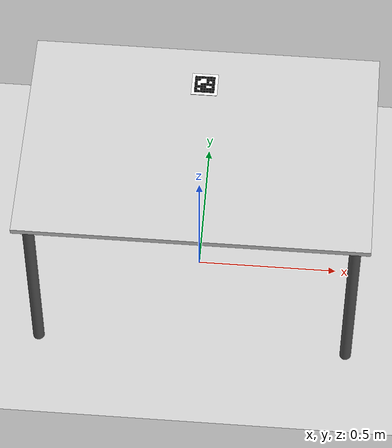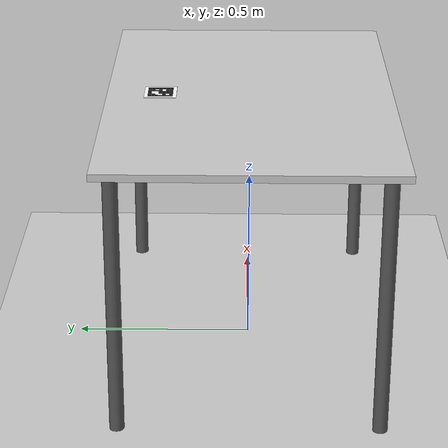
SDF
<sdf version="1.6">
  <world name="calibration_table">
    <include><uri>model://sun</uri></include>
    <include><uri>model://ground_plane</uri></include>

    <physics type="ode">
      <gravity>0 0 0</gravity>
    </physics>

    <include>
      <name>aruco_marker</name>
      <pose>0.0 0.25 0.752 1.5708 0 0</pose>
      <uri>model://aruco_marker</uri>
    </include>

    <!-- Desk surface is z=0.75 m: 1.20 x 0.80 x 0.02 m. -->
    <model name="calibration_desk">
      <static>true</static>
      <link name="desk_top">
        <pose>0 0 0.74 0 0 0</pose>
        <collision name="desk_top_collision">
          <geometry><box><size>1.2 0.8 0.02</size></box></geometry>
        </collision>
        <visual name="desk_top_visual">
          <geometry><box><size>1.2 0.8 0.02</size></box></geometry>
          <material><ambient>0.8 0.8 0.8 1</ambient></material>
        </visual>
      </link>
      <!-- Each visible leg uses the same geometry as its collision body. -->
      <link name="leg_fl"><pose> 0.55  0.35 0.37 0 0 0</pose>
        <collision name="leg_fl_collision"><geometry><cylinder><radius>0.02</radius><length>0.74</length></cylinder></geometry></collision>
        <visual name="leg_fl_visual"><geometry><cylinder><radius>0.02</radius><length>0.74</length></cylinder></geometry><material><ambient>0.35 0.35 0.35 1</ambient></material></visual></link>
      <link name="leg_fr"><pose> 0.55 -0.35 0.37 0 0 0</pose>
        <collision name="leg_fr_collision"><geometry><cylinder><radius>0.02</radius><length>0.74</length></cylinder></geometry></collision>
        <visual name="leg_fr_visual"><geometry><cylinder><radius>0.02</radius><length>0.74</length></cylinder></geometry><material><ambient>0.35 0.35 0.35 1</ambient></material></visual></link>
      <link name="leg_bl"><pose>-0.55  0.35 0.37 0 0 0</pose>
        <collision name="leg_bl_collision"><geometry><cylinder><radius>0.02</radius><length>0.74</length></cylinder></geometry></collision>
        <visual name="leg_bl_visual"><geometry><cylinder><radius>0.02</radius><length>0.74</length></cylinder></geometry><material><ambient>0.35 0.35 0.35 1</ambient></material></visual></link>
      <link name="leg_br"><pose>-0.55 -0.35 0.37 0 0 0</pose>
        <collision name="leg_br_collision"><geometry><cylinder><radius>0.02</radius><length>0.74</length></cylinder></geometry></collision>
        <visual name="leg_br_visual"><geometry><cylinder><radius>0.02</radius><length>0.74</length></cylinder></geometry><material><ambient>0.35 0.35 0.35 1</ambient></material></visual></link>
    </model>
  </world>
</sdf>

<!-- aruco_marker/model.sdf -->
<sdf version="1.6">
  <model name="aruco_5x5_250_id1">
    <static>true</static>
    <link name="board">
      <!-- DICT_5X5_250 marker id=1, borderBits=1. Rendered as geometry so Gazebo does not depend on texture/material loading. -->
      <!-- Back-side cells are mirrored in X so cameras viewing the rear face still see the canonical marker, not a mirror image. -->
      <collision name="collision">
        <geometry>
          <box>
            <size>0.09 0.002 0.09</size>
          </box>
        </geometry>
      </collision>

      <visual name="white_backing">
        <geometry>
          <box>
            <size>0.09 0.002 0.09</size>
          </box>
        </geometry>
        <material>
          <ambient>1 1 1 1</ambient>
          <diffuse>1 1 1 1</diffuse>
          <specular>0.1 0.1 0.1 1</specular>
        </material>
      </visual>

      <visual name="front_black_r0_c0">
        <pose>-0.0300 -0.00101 0.0300 0 0 0</pose>
        <geometry>
          <box>
            <size>0.0100 0.00002 0.0100</size>
          </box>
        </geometry>
        <material>
          <ambient>0 0 0 1</ambient>
          <diffuse>0 0 0 1</diffuse>
          <specular>0 0 0 1</specular>
        </material>
      </visual>
      <visual name="back_black_r0_c0_mirrored">
        <pose>0.0300 0.00101 0.0300 0 0 0</pose>
        <geometry>
          <box>
            <size>0.0100 0.00002 0.0100</size>
          </box>
        </geometry>
        <material>
          <ambient>0 0 0 1</ambient>
          <diffuse>0 0 0 1</diffuse>
          <specular>0 0 0 1</specular>
        </material>
      </visual>
      <visual name="front_black_r0_c1">
        <pose>-0.0200 -0.00101 0.0300 0 0 0</pose>
        <geometry>
          <box>
            <size>0.0100 0.00002 0.0100</size>
          </box>
        </geometry>
        <material>
          <ambient>0 0 0 1</ambient>
          <diffuse>0 0 0 1</diffuse>
          <specular>0 0 0 1</specular>
        </material>
      </visual>
      <visual name="back_black_r0_c1_mirrored">
        <pose>0.0200 0.00101 0.0300 0 0 0</pose>
        <geometry>
          <box>
            <size>0.0100 0.00002 0.0100</size>
          </box>
        </geometry>
        <material>
          <ambient>0 0 0 1</ambient>
          <diffuse>0 0 0 1</diffuse>
          <specular>0 0 0 1</specular>
        </material>
      </visual>
      <visual name="front_black_r0_c2">
        <pose>-0.0100 -0.00101 0.0300 0 0 0</pose>
        <geometry>
          <box>
            <size>0.0100 0.00002 0.0100</size>
          </box>
        </geometry>
        <material>
          <ambient>0 0 0 1</ambient>
          <diffuse>0 0 0 1</diffuse>
          <specular>0 0 0 1</specular>
        </material>
      </visual>
      <visual name="back_black_r0_c2_mirrored">
        <pose>0.0100 0.00101 0.0300 0 0 0</pose>
        <geometry>
          <box>
            <size>0.0100 0.00002 0.0100</size>
          </box>
        </geometry>
        <material>
          <ambient>0 0 0 1</ambient>
          <diffuse>0 0 0 1</diffuse>
          <specular>0 0 0 1</specular>
        </material>
      </visual>
      <visual name="front_black_r0_c3">
        <pose>0.0000 -0.00101 0.0300 0 0 0</pose>
        <geometry>
          <box>
            <size>0.0100 0.00002 0.0100</size>
          </box>
        </geometry>
        <material>
          <ambient>0 0 0 1</ambient>
          <diffuse>0 0 0 1</diffuse>
          <specular>0 0 0 1</specular>
        </material>
      </visual>
      <visual name="back_black_r0_c3_mirrored">
        <pose>0.0000 0.00101 0.0300 0 0 0</pose>
        <geometry>
          <box>
            <size>0.0100 0.00002 0.0100</size>
          </box>
        </geometry>
        <material>
          <ambient>0 0 0 1</ambient>
          <diffuse>0 0 0 1</diffuse>
          <specular>0 0 0 1</specular>
        </material>
      </visual>
      <visual name="front_black_r0_c4">
        <pose>0.0100 -0.00101 0.0300 0 0 0</pose>
        <geometry>
          <box>
            <size>0.0100 0.00002 0.0100</size>
          </box>
        </geometry>
        <material>
          <ambient>0 0 0 1</ambient>
          <diffuse>0 0 0 1</diffuse>
          <specular>0 0 0 1</specular>
        </material>
      </visual>
      <visual name="back_black_r0_c4_mirrored">
        <pose>-0.0100 0.00101 0.0300 0 0 0</pose>
        <geometry>
          <box>
            <size>0.0100 0.00002 0.0100</size>
          </box>
        </geometry>
        <material>
          <ambient>0 0 0 1</ambient>
          <diffuse>0 0 0 1</diffuse>
          <specular>0 0 0 1</specular>
        </material>
      </visual>
      <visual name="front_black_r0_c5">
        <pose>0.0200 -0.00101 0.0300 0 0 0</pose>
        <geometry>
          <box>
            <size>0.0100 0.00002 0.0100</size>
          </box>
        </geometry>
        <material>
          <ambient>0 0 0 1</ambient>
          <diffuse>0 0 0 1</diffuse>
          <specular>0 0 0 1</specular>
        </material>
      </visual>
      <visual name="back_black_r0_c5_mirrored">
        <pose>-0.0200 0.00101 0.0300 0 0 0</pose>
        <geometry>
          <box>
            <size>0.0100 0.00002 0.0100</size>
          </box>
        </geometry>
        <material>
          <ambient>0 0 0 1</ambient>
          <diffuse>0 0 0 1</diffuse>
          <specular>0 0 0 1</specular>
        </material>
      </visual>
      <visual name="front_black_r0_c6">
        <pose>0.0300 -0.00101 0.0300 0 0 0</pose>
        <geometry>
          <box>
            <size>0.0100 0.00002 0.0100</size>
          </box>
        </geometry>
        <material>
          <ambient>0 0 0 1</ambient>
          <diffuse>0 0 0 1</diffuse>
          <specular>0 0 0 1</specular>
        </material>
      </visual>
      <visual name="back_black_r0_c6_mirrored">
        <pose>-0.0300 0.00101 0.0300 0 0 0</pose>
        <geometry>
          <box>
            <size>0.0100 0.00002 0.0100</size>
          </box>
        </geometry>
        <material>
          <ambient>0 0 0 1</ambient>
          <diffuse>0 0 0 1</diffuse>
          <specular>0 0 0 1</specular>
        </material>
      </visual>
      <visual name="front_black_r1_c0">
        <pose>-0.0300 -0.00101 0.0200 0 0 0</pose>
        <geometry>
          <box>
            <size>0.0100 0.00002 0.0100</size>
          </box>
        </geometry>
        <material>
          <ambient>0 0 0 1</ambient>
          <diffuse>0 0 0 1</diffuse>
          <specular>0 0 0 1</specular>
        </material>
      </visual>
      <visual name="back_black_r1_c0_mirrored">
        <pose>0.0300 0.00101 0.0200 0 0 0</pose>
        <geometry>
          <box>
            <size>0.0100 0.00002 0.0100</size>
          </box>
        </geometry>
        <material>
          <ambient>0 0 0 1</ambient>
          <diffuse>0 0 0 1</diffuse>
          <specular>0 0 0 1</specular>
        </material>
      </visual>
      <visual name="front_black_r1_c1">
        <pose>-0.0200 -0.00101 0.0200 0 0 0</pose>
        <geometry>
          <box>
            <size>0.0100 0.00002 0.0100</size>
          </box>
        </geometry>
        <material>
          <ambient>0 0 0 1</ambient>
          <diffuse>0 0 0 1</diffuse>
          <specular>0 0 0 1</specular>
        </material>
      </visual>
      <visual name="back_black_r1_c1_mirrored">
        <pose>0.0200 0.00101 0.0200 0 0 0</pose>
        <geometry>
          <box>
            <size>0.0100 0.00002 0.0100</size>
          </box>
        </geometry>
        <material>
          <ambient>0 0 0 1</ambient>
          <diffuse>0 0 0 1</diffuse>
          <specular>0 0 0 1</specular>
        </material>
      </visual>
      <visual name="front_black_r1_c2">
        <pose>-0.0100 -0.00101 0.0200 0 0 0</pose>
        <geometry>
          <box>
            <size>0.0100 0.00002 0.0100</size>
          </box>
        </geometry>
        <material>
          <ambient>0 0 0 1</ambient>
          <diffuse>0 0 0 1</diffuse>
          <specular>0 0 0 1</specular>
        </material>
      </visual>
      <visual name="back_black_r1_c2_mirrored">
        <pose>0.0100 0.00101 0.0200 0 0 0</pose>
        <geometry>
          <box>
            <size>0.0100 0.00002 0.0100</size>
          </box>
        </geometry>
        <material>
          <ambient>0 0 0 1</ambient>
          <diffuse>0 0 0 1</diffuse>
          <specular>0 0 0 1</specular>
        </material>
      </visual>
      <visual name="front_black_r1_c3">
        <pose>0.0000 -0.00101 0.0200 0 0 0</pose>
        <geometry>
          <box>
            <size>0.0100 0.00002 0.0100</size>
          </box>
        </geometry>
        <material>
          <ambient>0 0 0 1</ambient>
          <diffuse>0 0 0 1</diffuse>
          <specular>0 0 0 1</specular>
        </material>
      </visual>
      <visual name="back_black_r1_c3_mirrored">
        <pose>0.0000 0.00101 0.0200 0 0 0</pose>
        <geometry>
          <box>
            <size>0.0100 0.00002 0.0100</size>
          </box>
        </geometry>
        <material>
          <ambient>0 0 0 1</ambient>
          <diffuse>0 0 0 1</diffuse>
          <specular>0 0 0 1</specular>
        </material>
      </visual>
      <visual name="front_black_r1_c4">
        <pose>0.0100 -0.00101 0.0200 0 0 0</pose>
        <geometry>
          <box>
            <size>0.0100 0.00002 0.0100</size>
          </box>
        </geometry>
        <material>
          <ambient>0 0 0 1</ambient>
          <diffuse>0 0 0 1</diffuse>
          <specular>0 0 0 1</specular>
        </material>
      </visual>
      <visual name="back_black_r1_c4_mirrored">
        <pose>-0.0100 0.00101 0.0200 0 0 0</pose>
        <geometry>
          <box>
            <size>0.0100 0.00002 0.0100</size>
          </box>
        </geometry>
        <material>
          <ambient>0 0 0 1</ambient>
          <diffuse>0 0 0 1</diffuse>
          <specular>0 0 0 1</specular>
        </material>
      </visual>
      <visual name="front_black_r1_c6">
        <pose>0.0300 -0.00101 0.0200 0 0 0</pose>
        <geometry>
          <box>
            <size>0.0100 0.00002 0.0100</size>
          </box>
        </geometry>
        <material>
          <ambient>0 0 0 1</ambient>
          <diffuse>0 0 0 1</diffuse>
          <specular>0 0 0 1</specular>
        </material>
      </visual>
      <visual name="back_black_r1_c6_mirrored">
        <pose>-0.0300 0.00101 0.0200 0 0 0</pose>
        <geometry>
          <box>
            <size>0.0100 0.00002 0.0100</size>
          </box>
        </geometry>
        <material>
          <ambient>0 0 0 1</ambient>
          <diffuse>0 0 0 1</diffuse>
          <specular>0 0 0 1</specular>
        </material>
      </visual>
      <visual name="front_black_r2_c0">
        <pose>-0.0300 -0.00101 0.0100 0 0 0</pose>
        <geometry>
          <box>
            <size>0.0100 0.00002 0.0100</size>
          </box>
        </geometry>
        <material>
          <ambient>0 0 0 1</ambient>
          <diffuse>0 0 0 1</diffuse>
          <specular>0 0 0 1</specular>
        </material>
      </visual>
      <visual name="back_black_r2_c0_mirrored">
        <pose>0.0300 0.00101 0.0100 0 0 0</pose>
        <geometry>
          <box>
            <size>0.0100 0.00002 0.0100</size>
          </box>
        </geometry>
        <material>
          <ambient>0 0 0 1</ambient>
          <diffuse>0 0 0 1</diffuse>
          <specular>0 0 0 1</specular>
        </material>
      </visual>
      <visual name="front_black_r2_c3">
        <pose>0.0000 -0.00101 0.0100 0 0 0</pose>
        <geometry>
          <box>
            <size>0.0100 0.00002 0.0100</size>
          </box>
        </geometry>
        <material>
          <ambient>0 0 0 1</ambient>
          <diffuse>0 0 0 1</diffuse>
          <specular>0 0 0 1</specular>
        </material>
      </visual>
      <visual name="back_black_r2_c3_mirrored">
        <pose>0.0000 0.00101 0.0100 0 0 0</pose>
        <geometry>
          <box>
            <size>0.0100 0.00002 0.0100</size>
          </box>
        </geometry>
        <material>
          <ambient>0 0 0 1</ambient>
          <diffuse>0 0 0 1</diffuse>
          <specular>0 0 0 1</specular>
        </material>
      </visual>
      <visual name="front_black_r2_c4">
        <pose>0.0100 -0.00101 0.0100 0 0 0</pose>
        <geometry>
          <box>
            <size>0.0100 0.00002 0.0100</size>
          </box>
        </geometry>
        <material>
          <ambient>0 0 0 1</ambient>
          <diffuse>0 0 0 1</diffuse>
          <specular>0 0 0 1</specular>
        </material>
      </visual>
      <visual name="back_black_r2_c4_mirrored">
        <pose>-0.0100 0.00101 0.0100 0 0 0</pose>
        <geometry>
          <box>
            <size>0.0100 0.00002 0.0100</size>
          </box>
        </geometry>
        <material>
          <ambient>0 0 0 1</ambient>
          <diffuse>0 0 0 1</diffuse>
          <specular>0 0 0 1</specular>
        </material>
      </visual>
      <visual name="front_black_r2_c5">
        <pose>0.0200 -0.00101 0.0100 0 0 0</pose>
        <geometry>
          <box>
            <size>0.0100 0.00002 0.0100</size>
          </box>
        </geometry>
        <material>
          <ambient>0 0 0 1</ambient>
          <diffuse>0 0 0 1</diffuse>
          <specular>0 0 0 1</specular>
        </material>
      </visual>
      <visual name="back_black_r2_c5_mirrored">
        <pose>-0.0200 0.00101 0.0100 0 0 0</pose>
        <geometry>
          <box>
            <size>0.0100 0.00002 0.0100</size>
          </box>
        </geometry>
        <material>
          <ambient>0 0 0 1</ambient>
          <diffuse>0 0 0 1</diffuse>
          <specular>0 0 0 1</specular>
        </material>
      </visual>
      <visual name="front_black_r2_c6">
        <pose>0.0300 -0.00101 0.0100 0 0 0</pose>
        <geometry>
          <box>
            <size>0.0100 0.00002 0.0100</size>
          </box>
        </geometry>
        <material>
          <ambient>0 0 0 1</ambient>
          <diffuse>0 0 0 1</diffuse>
          <specular>0 0 0 1</specular>
        </material>
      </visual>
      <visual name="back_black_r2_c6_mirrored">
        <pose>-0.0300 0.00101 0.0100 0 0 0</pose>
        <geometry>
          <box>
            <size>0.0100 0.00002 0.0100</size>
          </box>
        </geometry>
        <material>
          <ambient>0 0 0 1</ambient>
          <diffuse>0 0 0 1</diffuse>
          <specular>0 0 0 1</specular>
        </material>
      </visual>
      <visual name="front_black_r3_c0">
        <pose>-0.0300 -0.00101 0.0000 0 0 0</pose>
        <geometry>
          <box>
            <size>0.0100 0.00002 0.0100</size>
          </box>
        </geometry>
        <material>
          <ambient>0 0 0 1</ambient>
          <diffuse>0 0 0 1</diffuse>
          <specular>0 0 0 1</specular>
        </material>
      </visual>
      <visual name="back_black_r3_c0_mirrored">
        <pose>0.0300 0.00101 0.0000 0 0 0</pose>
        <geometry>
          <box>
            <size>0.0100 0.00002 0.0100</size>
          </box>
        </geometry>
        <material>
          <ambient>0 0 0 1</ambient>
          <diffuse>0 0 0 1</diffuse>
          <specular>0 0 0 1</specular>
        </material>
      </visual>
      <visual name="front_black_r3_c1">
        <pose>-0.0200 -0.00101 0.0000 0 0 0</pose>
        <geometry>
          <box>
            <size>0.0100 0.00002 0.0100</size>
          </box>
        </geometry>
        <material>
          <ambient>0 0 0 1</ambient>
          <diffuse>0 0 0 1</diffuse>
          <specular>0 0 0 1</specular>
        </material>
      </visual>
      <visual name="back_black_r3_c1_mirrored">
        <pose>0.0200 0.00101 0.0000 0 0 0</pose>
        <geometry>
          <box>
            <size>0.0100 0.00002 0.0100</size>
          </box>
        </geometry>
        <material>
          <ambient>0 0 0 1</ambient>
          <diffuse>0 0 0 1</diffuse>
          <specular>0 0 0 1</specular>
        </material>
      </visual>
      <visual name="front_black_r3_c2">
        <pose>-0.0100 -0.00101 0.0000 0 0 0</pose>
        <geometry>
          <box>
            <size>0.0100 0.00002 0.0100</size>
          </box>
        </geometry>
        <material>
          <ambient>0 0 0 1</ambient>
          <diffuse>0 0 0 1</diffuse>
          <specular>0 0 0 1</specular>
        </material>
      </visual>
      <visual name="back_black_r3_c2_mirrored">
        <pose>0.0100 0.00101 0.0000 0 0 0</pose>
        <geometry>
          <box>
            <size>0.0100 0.00002 0.0100</size>
          </box>
        </geometry>
        <material>
          <ambient>0 0 0 1</ambient>
          <diffuse>0 0 0 1</diffuse>
          <specular>0 0 0 1</specular>
        </material>
      </visual>
      <visual name="front_black_r3_c3">
        <pose>0.0000 -0.00101 0.0000 0 0 0</pose>
        <geometry>
          <box>
            <size>0.0100 0.00002 0.0100</size>
          </box>
        </geometry>
        <material>
          <ambient>0 0 0 1</ambient>
          <diffuse>0 0 0 1</diffuse>
          <specular>0 0 0 1</specular>
        </material>
      </visual>
      <visual name="back_black_r3_c3_mirrored">
        <pose>0.0000 0.00101 0.0000 0 0 0</pose>
        <geometry>
          <box>
            <size>0.0100 0.00002 0.0100</size>
          </box>
        </geometry>
        <material>
          <ambient>0 0 0 1</ambient>
          <diffuse>0 0 0 1</diffuse>
          <specular>0 0 0 1</specular>
        </material>
      </visual>
      <visual name="front_black_r3_c4">
        <pose>0.0100 -0.00101 0.0000 0 0 0</pose>
        <geometry>
          <box>
            <size>0.0100 0.00002 0.0100</size>
          </box>
        </geometry>
        <material>
          <ambient>0 0 0 1</ambient>
          <diffuse>0 0 0 1</diffuse>
          <specular>0 0 0 1</specular>
        </material>
      </visual>
      <visual name="back_black_r3_c4_mirrored">
        <pose>-0.0100 0.00101 0.0000 0 0 0</pose>
        <geometry>
          <box>
            <size>0.0100 0.00002 0.0100</size>
          </box>
        </geometry>
        <material>
          <ambient>0 0 0 1</ambient>
          <diffuse>0 0 0 1</diffuse>
          <specular>0 0 0 1</specular>
        </material>
      </visual>
      <visual name="front_black_r3_c6">
        <pose>0.0300 -0.00101 0.0000 0 0 0</pose>
        <geometry>
          <box>
            <size>0.0100 0.00002 0.0100</size>
          </box>
        </geometry>
        <material>
          <ambient>0 0 0 1</ambient>
          <diffuse>0 0 0 1</diffuse>
          <specular>0 0 0 1</specular>
        </material>
      </visual>
      <visual name="back_black_r3_c6_mirrored">
        <pose>-0.0300 0.00101 0.0000 0 0 0</pose>
        <geometry>
          <box>
            <size>0.0100 0.00002 0.0100</size>
          </box>
        </geometry>
        <material>
          <ambient>0 0 0 1</ambient>
          <diffuse>0 0 0 1</diffuse>
          <specular>0 0 0 1</specular>
        </material>
      </visual>
      <visual name="front_black_r4_c0">
        <pose>-0.0300 -0.00101 -0.0100 0 0 0</pose>
        <geometry>
          <box>
            <size>0.0100 0.00002 0.0100</size>
          </box>
        </geometry>
        <material>
          <ambient>0 0 0 1</ambient>
          <diffuse>0 0 0 1</diffuse>
          <specular>0 0 0 1</specular>
        </material>
      </visual>
      <visual name="back_black_r4_c0_mirrored">
        <pose>0.0300 0.00101 -0.0100 0 0 0</pose>
        <geometry>
          <box>
            <size>0.0100 0.00002 0.0100</size>
          </box>
        </geometry>
        <material>
          <ambient>0 0 0 1</ambient>
          <diffuse>0 0 0 1</diffuse>
          <specular>0 0 0 1</specular>
        </material>
      </visual>
      <visual name="front_black_r4_c2">
        <pose>-0.0100 -0.00101 -0.0100 0 0 0</pose>
        <geometry>
          <box>
            <size>0.0100 0.00002 0.0100</size>
          </box>
        </geometry>
        <material>
          <ambient>0 0 0 1</ambient>
          <diffuse>0 0 0 1</diffuse>
          <specular>0 0 0 1</specular>
        </material>
      </visual>
      <visual name="back_black_r4_c2_mirrored">
        <pose>0.0100 0.00101 -0.0100 0 0 0</pose>
        <geometry>
          <box>
            <size>0.0100 0.00002 0.0100</size>
          </box>
        </geometry>
        <material>
          <ambient>0 0 0 1</ambient>
          <diffuse>0 0 0 1</diffuse>
          <specular>0 0 0 1</specular>
        </material>
      </visual>
      <visual name="front_black_r4_c6">
        <pose>0.0300 -0.00101 -0.0100 0 0 0</pose>
        <geometry>
          <box>
            <size>0.0100 0.00002 0.0100</size>
          </box>
        </geometry>
        <material>
          <ambient>0 0 0 1</ambient>
          <diffuse>0 0 0 1</diffuse>
          <specular>0 0 0 1</specular>
        </material>
      </visual>
      <visual name="back_black_r4_c6_mirrored">
        <pose>-0.0300 0.00101 -0.0100 0 0 0</pose>
        <geometry>
          <box>
            <size>0.0100 0.00002 0.0100</size>
          </box>
        </geometry>
        <material>
          <ambient>0 0 0 1</ambient>
          <diffuse>0 0 0 1</diffuse>
          <specular>0 0 0 1</specular>
        </material>
      </visual>
      <visual name="front_black_r5_c0">
        <pose>-0.0300 -0.00101 -0.0200 0 0 0</pose>
        <geometry>
          <box>
            <size>0.0100 0.00002 0.0100</size>
          </box>
        </geometry>
        <material>
          <ambient>0 0 0 1</ambient>
          <diffuse>0 0 0 1</diffuse>
          <specular>0 0 0 1</specular>
        </material>
      </visual>
      <visual name="back_black_r5_c0_mirrored">
        <pose>0.0300 0.00101 -0.0200 0 0 0</pose>
        <geometry>
          <box>
            <size>0.0100 0.00002 0.0100</size>
          </box>
        </geometry>
        <material>
          <ambient>0 0 0 1</ambient>
          <diffuse>0 0 0 1</diffuse>
          <specular>0 0 0 1</specular>
        </material>
      </visual>
      <visual name="front_black_r5_c1">
        <pose>-0.0200 -0.00101 -0.0200 0 0 0</pose>
        <geometry>
          <box>
            <size>0.0100 0.00002 0.0100</size>
          </box>
        </geometry>
        <material>
          <ambient>0 0 0 1</ambient>
          <diffuse>0 0 0 1</diffuse>
          <specular>0 0 0 1</specular>
        </material>
      </visual>
      <visual name="back_black_r5_c1_mirrored">
        <pose>0.0200 0.00101 -0.0200 0 0 0</pose>
        <geometry>
          <box>
            <size>0.0100 0.00002 0.0100</size>
          </box>
        </geometry>
        <material>
          <ambient>0 0 0 1</ambient>
          <diffuse>0 0 0 1</diffuse>
          <specular>0 0 0 1</specular>
        </material>
      </visual>
      <visual name="front_black_r5_c2">
        <pose>-0.0100 -0.00101 -0.0200 0 0 0</pose>
        <geometry>
          <box>
            <size>0.0100 0.00002 0.0100</size>
          </box>
        </geometry>
        <material>
          <ambient>0 0 0 1</ambient>
          <diffuse>0 0 0 1</diffuse>
          <specular>0 0 0 1</specular>
        </material>
      </visual>
      <visual name="back_black_r5_c2_mirrored">
        <pose>0.0100 0.00101 -0.0200 0 0 0</pose>
        <geometry>
          <box>
            <size>0.0100 0.00002 0.0100</size>
          </box>
        </geometry>
        <material>
          <ambient>0 0 0 1</ambient>
          <diffuse>0 0 0 1</diffuse>
          <specular>0 0 0 1</specular>
        </material>
      </visual>
      <visual name="front_black_r5_c5">
        <pose>0.0200 -0.00101 -0.0200 0 0 0</pose>
        <geometry>
          <box>
            <size>0.0100 0.00002 0.0100</size>
          </box>
        </geometry>
        <material>
          <ambient>0 0 0 1</ambient>
          <diffuse>0 0 0 1</diffuse>
          <specular>0 0 0 1</specular>
        </material>
      </visual>
      <visual name="back_black_r5_c5_mirrored">
        <pose>-0.0200 0.00101 -0.0200 0 0 0</pose>
        <geometry>
          <box>
            <size>0.0100 0.00002 0.0100</size>
          </box>
        </geometry>
        <material>
          <ambient>0 0 0 1</ambient>
          <diffuse>0 0 0 1</diffuse>
          <specular>0 0 0 1</specular>
        </material>
      </visual>
      <visual name="front_black_r5_c6">
        <pose>0.0300 -0.00101 -0.0200 0 0 0</pose>
        <geometry>
          <box>
            <size>0.0100 0.00002 0.0100</size>
          </box>
        </geometry>
        <material>
          <ambient>0 0 0 1</ambient>
          <diffuse>0 0 0 1</diffuse>
          <specular>0 0 0 1</specular>
        </material>
      </visual>
      <visual name="back_black_r5_c6_mirrored">
        <pose>-0.0300 0.00101 -0.0200 0 0 0</pose>
        <geometry>
          <box>
            <size>0.0100 0.00002 0.0100</size>
          </box>
        </geometry>
        <material>
          <ambient>0 0 0 1</ambient>
          <diffuse>0 0 0 1</diffuse>
          <specular>0 0 0 1</specular>
        </material>
      </visual>
      <visual name="front_black_r6_c0">
        <pose>-0.0300 -0.00101 -0.0300 0 0 0</pose>
        <geometry>
          <box>
            <size>0.0100 0.00002 0.0100</size>
          </box>
        </geometry>
        <material>
          <ambient>0 0 0 1</ambient>
          <diffuse>0 0 0 1</diffuse>
          <specular>0 0 0 1</specular>
        </material>
      </visual>
      <visual name="back_black_r6_c0_mirrored">
        <pose>0.0300 0.00101 -0.0300 0 0 0</pose>
        <geometry>
          <box>
            <size>0.0100 0.00002 0.0100</size>
          </box>
        </geometry>
        <material>
          <ambient>0 0 0 1</ambient>
          <diffuse>0 0 0 1</diffuse>
          <specular>0 0 0 1</specular>
        </material>
      </visual>
      <visual name="front_black_r6_c1">
        <pose>-0.0200 -0.00101 -0.0300 0 0 0</pose>
        <geometry>
          <box>
            <size>0.0100 0.00002 0.0100</size>
          </box>
        </geometry>
        <material>
          <ambient>0 0 0 1</ambient>
          <diffuse>0 0 0 1</diffuse>
          <specular>0 0 0 1</specular>
        </material>
      </visual>
      <visual name="back_black_r6_c1_mirrored">
        <pose>0.0200 0.00101 -0.0300 0 0 0</pose>
        <geometry>
          <box>
            <size>0.0100 0.00002 0.0100</size>
          </box>
        </geometry>
        <material>
          <ambient>0 0 0 1</ambient>
          <diffuse>0 0 0 1</diffuse>
          <specular>0 0 0 1</specular>
        </material>
      </visual>
      <visual name="front_black_r6_c2">
        <pose>-0.0100 -0.00101 -0.0300 0 0 0</pose>
        <geometry>
          <box>
            <size>0.0100 0.00002 0.0100</size>
          </box>
        </geometry>
        <material>
          <ambient>0 0 0 1</ambient>
          <diffuse>0 0 0 1</diffuse>
          <specular>0 0 0 1</specular>
        </material>
      </visual>
      <visual name="back_black_r6_c2_mirrored">
        <pose>0.0100 0.00101 -0.0300 0 0 0</pose>
        <geometry>
          <box>
            <size>0.0100 0.00002 0.0100</size>
          </box>
        </geometry>
        <material>
          <ambient>0 0 0 1</ambient>
          <diffuse>0 0 0 1</diffuse>
          <specular>0 0 0 1</specular>
        </material>
      </visual>
      <visual name="front_black_r6_c3">
        <pose>0.0000 -0.00101 -0.0300 0 0 0</pose>
        <geometry>
          <box>
            <size>0.0100 0.00002 0.0100</size>
          </box>
        </geometry>
        <material>
          <ambient>0 0 0 1</ambient>
          <diffuse>0 0 0 1</diffuse>
          <specular>0 0 0 1</specular>
        </material>
      </visual>
      <visual name="back_black_r6_c3_mirrored">
        <pose>0.0000 0.00101 -0.0300 0 0 0</pose>
        <geometry>
          <box>
            <size>0.0100 0.00002 0.0100</size>
          </box>
        </geometry>
        <material>
          <ambient>0 0 0 1</ambient>
          <diffuse>0 0 0 1</diffuse>
          <specular>0 0 0 1</specular>
        </material>
      </visual>
      <visual name="front_black_r6_c4">
        <pose>0.0100 -0.00101 -0.0300 0 0 0</pose>
        <geometry>
          <box>
            <size>0.0100 0.00002 0.0100</size>
          </box>
        </geometry>
        <material>
          <ambient>0 0 0 1</ambient>
          <diffuse>0 0 0 1</diffuse>
          <specular>0 0 0 1</specular>
        </material>
      </visual>
      <visual name="back_black_r6_c4_mirrored">
        <pose>-0.0100 0.00101 -0.0300 0 0 0</pose>
        <geometry>
          <box>
            <size>0.0100 0.00002 0.0100</size>
          </box>
        </geometry>
        <material>
          <ambient>0 0 0 1</ambient>
          <diffuse>0 0 0 1</diffuse>
          <specular>0 0 0 1</specular>
        </material>
      </visual>
      <visual name="front_black_r6_c5">
        <pose>0.0200 -0.00101 -0.0300 0 0 0</pose>
        <geometry>
          <box>
            <size>0.0100 0.00002 0.0100</size>
          </box>
        </geometry>
        <material>
          <ambient>0 0 0 1</ambient>
          <diffuse>0 0 0 1</diffuse>
          <specular>0 0 0 1</specular>
        </material>
      </visual>
      <visual name="back_black_r6_c5_mirrored">
        <pose>-0.0200 0.00101 -0.0300 0 0 0</pose>
        <geometry>
          <box>
            <size>0.0100 0.00002 0.0100</size>
          </box>
        </geometry>
        <material>
          <ambient>0 0 0 1</ambient>
          <diffuse>0 0 0 1</diffuse>
          <specular>0 0 0 1</specular>
        </material>
      </visual>
      <visual name="front_black_r6_c6">
        <pose>0.0300 -0.00101 -0.0300 0 0 0</pose>
        <geometry>
          <box>
            <size>0.0100 0.00002 0.0100</size>
          </box>
        </geometry>
        <material>
          <ambient>0 0 0 1</ambient>
          <diffuse>0 0 0 1</diffuse>
          <specular>0 0 0 1</specular>
        </material>
      </visual>
      <visual name="back_black_r6_c6_mirrored">
        <pose>-0.0300 0.00101 -0.0300 0 0 0</pose>
        <geometry>
          <box>
            <size>0.0100 0.00002 0.0100</size>
          </box>
        </geometry>
        <material>
          <ambient>0 0 0 1</ambient>
          <diffuse>0 0 0 1</diffuse>
          <specular>0 0 0 1</specular>
        </material>
      </visual>
    </link>
  </model>
</sdf>
